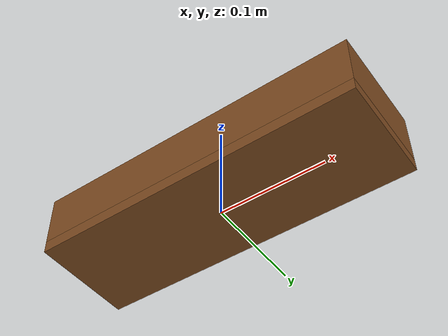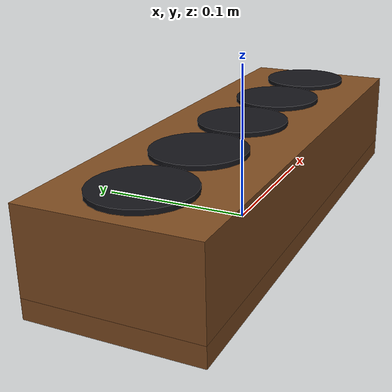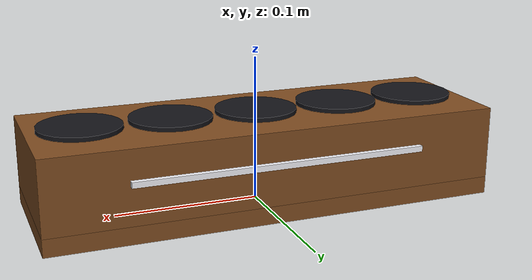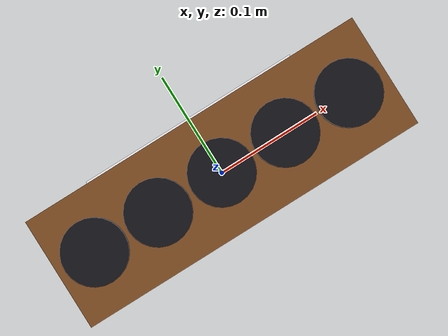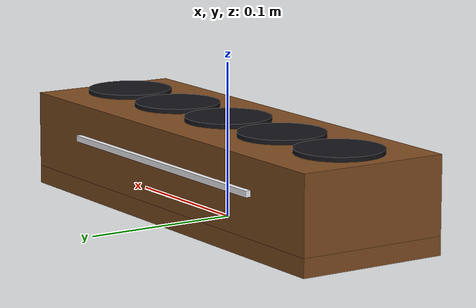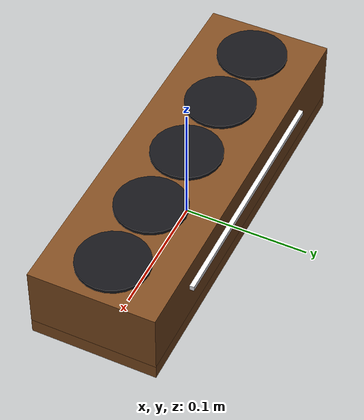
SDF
<?xml version="1.0"?>
<sdf version="1.6">
  <!-- 试管架(静态环境道具):木块钻圆孔造型。
       视觉 = 实木块 + 5 个深色圆形孔口,呈现经典"木块圆孔"试管架;
       碰撞 = 隐藏内部的方形导孔(前/后墙 + 4 隔墙 + 2 端板),稳定引导外径 0.022 的玻璃试管下插。 -->
  <model name="test_tube_rack">
    <static>true</static>
    <link name="link">
      <!-- 底座板(顶面 z=0.012,试管即落于此) -->
      <collision name="collision_base">
        <pose>0 0 0.006 0 0 0</pose>
        <geometry><box><size>0.31 0.10 0.012</size></box></geometry>
        <surface>
          <friction><ode><mu>1.0</mu><mu2>1.0</mu2></ode></friction>
        </surface>
      </collision>
      <visual name="visual_base">
        <pose>0 0 0.006 0 0 0</pose>
        <geometry><box><size>0.31 0.10 0.012</size></box></geometry>
        <material>
          <ambient>0.30 0.18 0.07 1</ambient>
          <diffuse>0.50 0.30 0.13 1</diffuse>
          <specular>0.10 0.10 0.10 1</specular>
          <shininess>8</shininess>
        </material>
      </visual>

      <!-- ── 碰撞:木块内的方形导孔结构(z 中心 0.037,高 0.050) ── -->
      <!-- 前墙(y∈[0.022,0.050]) -->
      <collision name="collision_wall_front">
        <pose>0 0.036 0.037 0 0 0</pose>
        <geometry><box><size>0.31 0.028 0.050</size></box></geometry>
        <surface><friction><ode><mu>1.0</mu><mu2>1.0</mu2></ode></friction></surface>
      </collision>
      <!-- 后墙(y∈[-0.050,-0.022]) -->
      <collision name="collision_wall_back">
        <pose>0 -0.036 0.037 0 0 0</pose>
        <geometry><box><size>0.31 0.028 0.050</size></box></geometry>
        <surface><friction><ode><mu>1.0</mu><mu2>1.0</mu2></ode></friction></surface>
      </collision>
      <!-- 4 条隔墙,分隔 5 个导孔 -->
      <collision name="collision_divider_1">
        <pose>-0.09 0 0.037 0 0 0</pose>
        <geometry><box><size>0.020 0.044 0.050</size></box></geometry>
        <surface><friction><ode><mu>1.0</mu><mu2>1.0</mu2></ode></friction></surface>
      </collision>
      <collision name="collision_divider_2">
        <pose>-0.03 0 0.037 0 0 0</pose>
        <geometry><box><size>0.020 0.044 0.050</size></box></geometry>
        <surface><friction><ode><mu>1.0</mu><mu2>1.0</mu2></ode></friction></surface>
      </collision>
      <collision name="collision_divider_3">
        <pose>0.03 0 0.037 0 0 0</pose>
        <geometry><box><size>0.020 0.044 0.050</size></box></geometry>
        <surface><friction><ode><mu>1.0</mu><mu2>1.0</mu2></ode></friction></surface>
      </collision>
      <collision name="collision_divider_4">
        <pose>0.09 0 0.037 0 0 0</pose>
        <geometry><box><size>0.020 0.044 0.050</size></box></geometry>
        <surface><friction><ode><mu>1.0</mu><mu2>1.0</mu2></ode></friction></surface>
      </collision>
      <!-- 两端封板 -->
      <collision name="collision_endcap_1">
        <pose>-0.145 0 0.037 0 0 0</pose>
        <geometry><box><size>0.020 0.044 0.050</size></box></geometry>
        <surface><friction><ode><mu>1.0</mu><mu2>1.0</mu2></ode></friction></surface>
      </collision>
      <collision name="collision_endcap_2">
        <pose>0.145 0 0.037 0 0 0</pose>
        <geometry><box><size>0.020 0.044 0.050</size></box></geometry>
        <surface><friction><ode><mu>1.0</mu><mu2>1.0</mu2></ode></friction></surface>
      </collision>

      <!-- ── 视觉:实木块(z∈[0.012,0.062]),管下段被木块遮住,呈现"插入孔中" ── -->
      <visual name="visual_block">
        <pose>0 0 0.037 0 0 0</pose>
        <geometry><box><size>0.31 0.10 0.050</size></box></geometry>
        <material>
          <ambient>0.30 0.18 0.07 1</ambient>
          <diffuse>0.50 0.30 0.13 1</diffuse>
          <specular>0.10 0.10 0.10 1</specular>
          <shininess>8</shininess>
        </material>
      </visual>

      <!-- 5 个深色圆形孔口(视觉),孔心 x=-0.12..0.12 -->
      <visual name="visual_hole_1">
        <pose>-0.12 0 0.064 0 0 0</pose>
        <geometry><cylinder><radius>0.028</radius><length>0.003</length></cylinder></geometry>
        <material>
          <ambient>0.05 0.05 0.06 1</ambient>
          <diffuse>0.08 0.08 0.10 1</diffuse>
          <specular>0.05 0.05 0.05 1</specular>
          <shininess>4</shininess>
        </material>
      </visual>
      <visual name="visual_hole_2">
        <pose>-0.06 0 0.064 0 0 0</pose>
        <geometry><cylinder><radius>0.028</radius><length>0.003</length></cylinder></geometry>
        <material>
          <ambient>0.05 0.05 0.06 1</ambient>
          <diffuse>0.08 0.08 0.10 1</diffuse>
          <specular>0.05 0.05 0.05 1</specular>
          <shininess>4</shininess>
        </material>
      </visual>
      <visual name="visual_hole_3">
        <pose>0 0 0.064 0 0 0</pose>
        <geometry><cylinder><radius>0.028</radius><length>0.003</length></cylinder></geometry>
        <material>
          <ambient>0.05 0.05 0.06 1</ambient>
          <diffuse>0.08 0.08 0.10 1</diffuse>
          <specular>0.05 0.05 0.05 1</specular>
          <shininess>4</shininess>
        </material>
      </visual>
      <visual name="visual_hole_4">
        <pose>0.06 0 0.064 0 0 0</pose>
        <geometry><cylinder><radius>0.028</radius><length>0.003</length></cylinder></geometry>
        <material>
          <ambient>0.05 0.05 0.06 1</ambient>
          <diffuse>0.08 0.08 0.10 1</diffuse>
          <specular>0.05 0.05 0.05 1</specular>
          <shininess>4</shininess>
        </material>
      </visual>
      <visual name="visual_hole_5">
        <pose>0.12 0 0.064 0 0 0</pose>
        <geometry><cylinder><radius>0.028</radius><length>0.003</length></cylinder></geometry>
        <material>
          <ambient>0.05 0.05 0.06 1</ambient>
          <diffuse>0.08 0.08 0.10 1</diffuse>
          <specular>0.05 0.05 0.05 1</specular>
          <shininess>4</shininess>
        </material>
      </visual>

      <!-- 白色标签条(仅视觉) -->
      <visual name="visual_label">
        <pose>0 0.0505 0.040 0 0 0</pose>
        <geometry><box><size>0.20 0.006 0.004</size></box></geometry>
        <material>
          <ambient>0.90 0.90 0.92 1</ambient>
          <diffuse>0.96 0.96 0.98 1</diffuse>
          <specular>0.10 0.10 0.10 1</specular>
          <shininess>8</shininess>
        </material>
      </visual>
    </link>
  </model>
</sdf>
